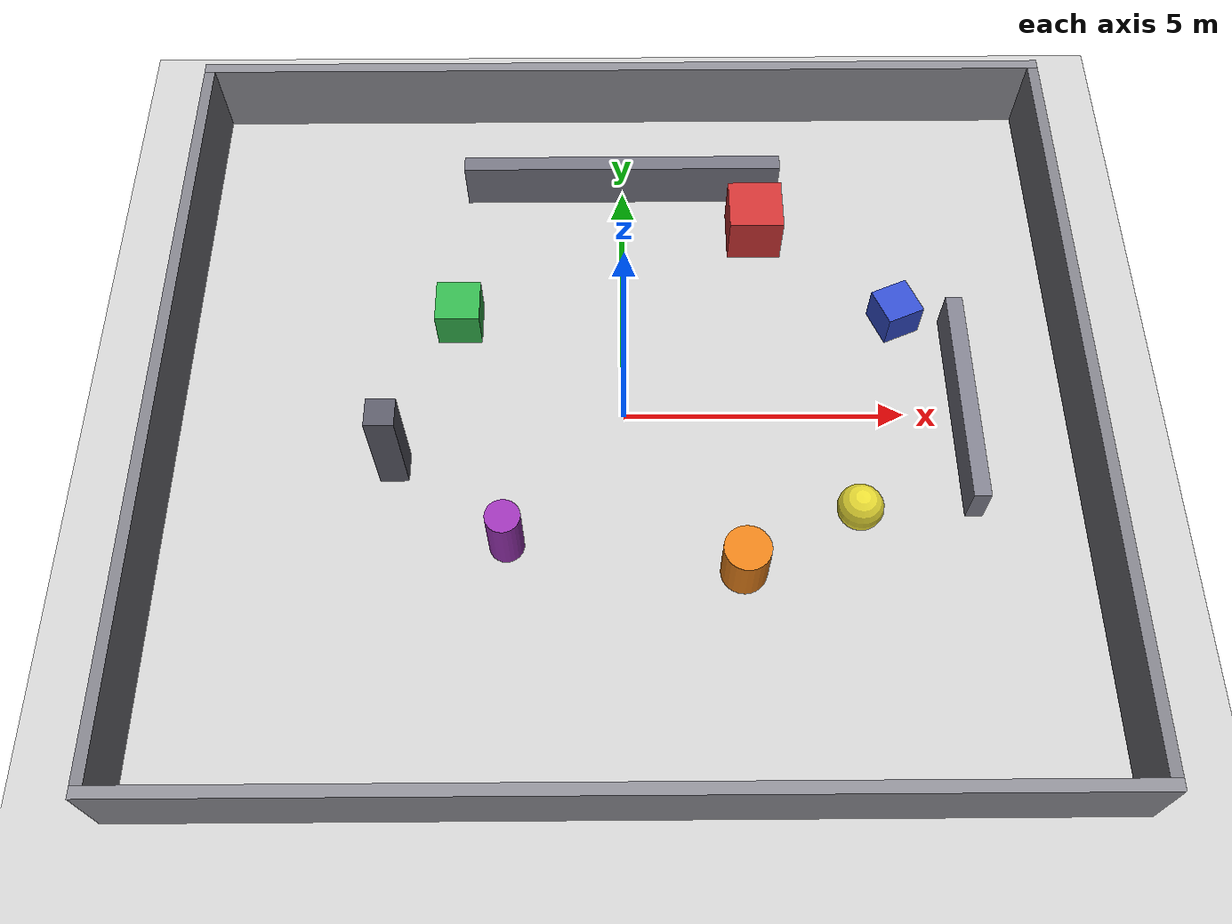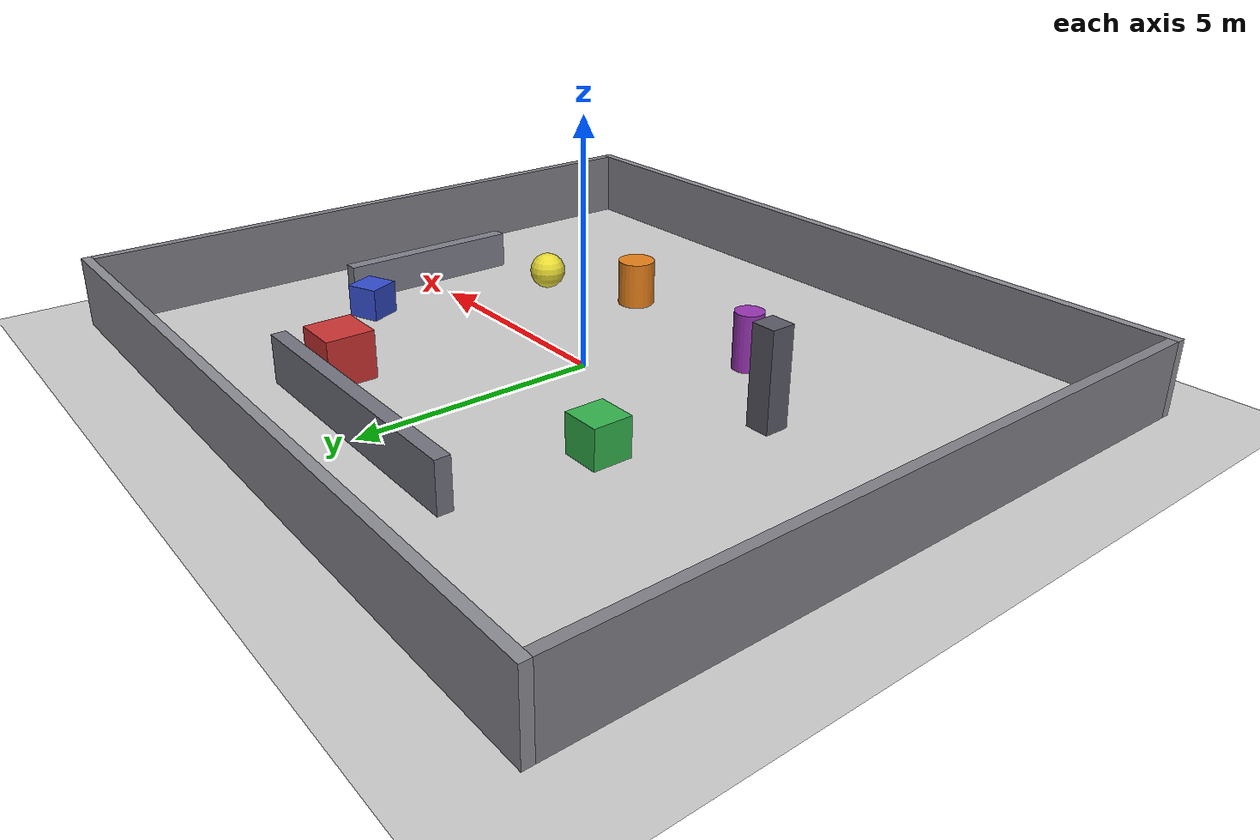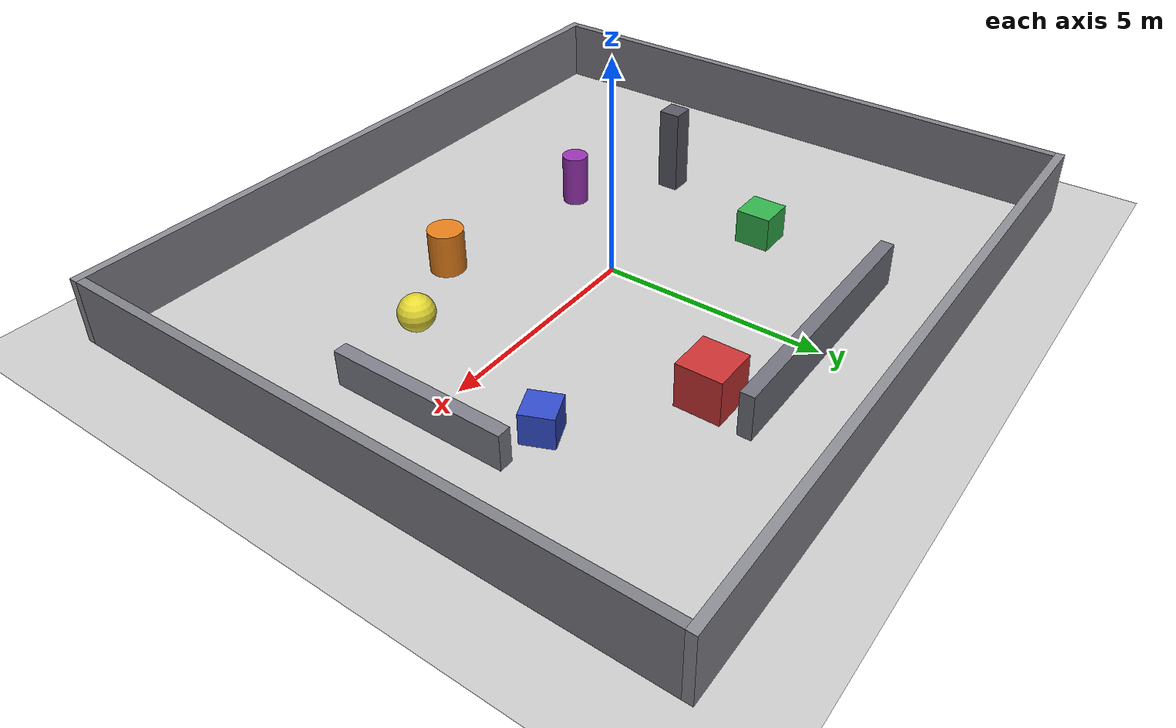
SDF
<?xml version="1.0" ?>
<sdf version="1.8">
  <world name="spot_obstacles">
    <physics name="1ms" type="ignored">
      <max_step_size>0.001</max_step_size>
      <real_time_factor>1.0</real_time_factor>
    </physics>

    <plugin filename="gz-sim-physics-system" name="gz::sim::systems::Physics"/>
    <plugin filename="gz-sim-user-commands-system" name="gz::sim::systems::UserCommands"/>
    <plugin filename="gz-sim-scene-broadcaster-system" name="gz::sim::systems::SceneBroadcaster"/>
    <plugin filename="gz-sim-contact-system" name="gz::sim::systems::Contact"/>
    <plugin filename="gz-sim-imu-system" name="gz::sim::systems::Imu"/>
    <plugin filename="gz-sim-sensors-system" name="gz::sim::systems::Sensors">
      <render_engine>ogre2</render_engine>
    </plugin>

    <light type="directional" name="sun">
      <cast_shadows>true</cast_shadows>
      <pose>0 0 10 0 0 0</pose>
      <diffuse>0.8 0.8 0.8 1</diffuse>
      <specular>0.2 0.2 0.2 1</specular>
      <attenuation>
        <range>1000</range>
        <constant>0.9</constant>
        <linear>0.01</linear>
        <quadratic>0.001</quadratic>
      </attenuation>
      <direction>-0.5 0.1 -0.9</direction>
    </light>

    <model name="ground_plane">
      <static>true</static>
      <link name="link">
        <collision name="collision">
          <geometry>
            <plane>
              <normal>0 0 1</normal>
              <size>100 100</size>
            </plane>
          </geometry>
          <surface>
            <friction>
              <ode>
                <mu>1.5</mu>
                <mu2>1.5</mu2>
              </ode>
            </friction>
            <contact>
              <ode>
                <kp>1e6</kp>
                <kd>100</kd>
                <min_depth>0.001</min_depth>
                <max_vel>0.5</max_vel>
              </ode>
            </contact>
          </surface>
        </collision>
        <visual name="visual">
          <geometry>
            <plane>
              <normal>0 0 1</normal>
              <size>100 100</size>
            </plane>
          </geometry>
          <material>
            <ambient>0.8 0.8 0.8 1</ambient>
            <diffuse>0.8 0.8 0.8 1</diffuse>
            <specular>0.8 0.8 0.8 1</specular>
          </material>
        </visual>
      </link>
    </model>

    <!-- Boxes (static obstacles) -->
    <model name="box_red">
      <static>true</static>
      <!-- Side of spawn (+Y); clear of forward path along +X -->
      <pose>2.5 4.0 0.5 0 0 0</pose>
      <link name="link">
        <collision name="collision">
          <geometry><box><size>1 1 1</size></box></geometry>
        </collision>
        <visual name="visual">
          <geometry><box><size>1 1 1</size></box></geometry>
          <material>
            <ambient>0.8 0.2 0.2 1</ambient>
            <diffuse>0.8 0.2 0.2 1</diffuse>
          </material>
        </visual>
      </link>
    </model>

    <model name="box_blue">
      <static>true</static>
      <pose>5 2 0.35 0 0 0.4</pose>
      <link name="link">
        <collision name="collision">
          <geometry><box><size>0.7 0.7 0.7</size></box></geometry>
        </collision>
        <visual name="visual">
          <geometry><box><size>0.7 0.7 0.7</size></box></geometry>
          <material>
            <ambient>0.2 0.3 0.8 1</ambient>
            <diffuse>0.2 0.3 0.8 1</diffuse>
          </material>
        </visual>
      </link>
    </model>

    <model name="box_green">
      <static>true</static>
      <pose>-3 2 0.4 0 0 0</pose>
      <link name="link">
        <collision name="collision">
          <geometry><box><size>0.8 0.8 0.8</size></box></geometry>
        </collision>
        <visual name="visual">
          <geometry><box><size>0.8 0.8 0.8</size></box></geometry>
          <material>
            <ambient>0.2 0.7 0.3 1</ambient>
            <diffuse>0.2 0.7 0.3 1</diffuse>
          </material>
        </visual>
      </link>
    </model>

    <!-- Cylinders -->
    <model name="cylinder_orange">
      <static>true</static>
      <pose>2 -3 0.5 0 0 0</pose>
      <link name="link">
        <collision name="collision">
          <geometry><cylinder><radius>0.4</radius><length>1.0</length></cylinder></geometry>
        </collision>
        <visual name="visual">
          <geometry><cylinder><radius>0.4</radius><length>1.0</length></cylinder></geometry>
          <material>
            <ambient>0.9 0.5 0.1 1</ambient>
            <diffuse>0.9 0.5 0.1 1</diffuse>
          </material>
        </visual>
      </link>
    </model>

    <model name="cylinder_purple">
      <static>true</static>
      <pose>-2 -2.5 0.6 0 0 0</pose>
      <link name="link">
        <collision name="collision">
          <geometry><cylinder><radius>0.3</radius><length>1.2</length></cylinder></geometry>
        </collision>
        <visual name="visual">
          <geometry><cylinder><radius>0.3</radius><length>1.2</length></cylinder></geometry>
          <material>
            <ambient>0.6 0.2 0.7 1</ambient>
            <diffuse>0.6 0.2 0.7 1</diffuse>
          </material>
        </visual>
      </link>
    </model>

    <!-- Sphere -->
    <model name="sphere_yellow">
      <static>true</static>
      <pose>4 -2 0.4 0 0 0</pose>
      <link name="link">
        <collision name="collision">
          <geometry><sphere><radius>0.4</radius></sphere></geometry>
        </collision>
        <visual name="visual">
          <geometry><sphere><radius>0.4</radius></sphere></geometry>
          <material>
            <ambient>0.9 0.85 0.2 1</ambient>
            <diffuse>0.9 0.85 0.2 1</diffuse>
          </material>
        </visual>
      </link>
    </model>

    <!-- Low wall / barrier -->
    <model name="wall_front">
      <static>true</static>
      <pose>6 0 0.4 0 0 0</pose>
      <link name="link">
        <collision name="collision">
          <geometry><box><size>0.3 4 0.8</size></box></geometry>
        </collision>
        <visual name="visual">
          <geometry><box><size>0.3 4 0.8</size></box></geometry>
          <material>
            <ambient>0.5 0.5 0.55 1</ambient>
            <diffuse>0.5 0.5 0.55 1</diffuse>
          </material>
        </visual>
      </link>
    </model>

    <model name="wall_side">
      <static>true</static>
      <pose>0 5 0.5 0 0 0</pose>
      <link name="link">
        <collision name="collision">
          <geometry><box><size>6 0.3 1.0</size></box></geometry>
        </collision>
        <visual name="visual">
          <geometry><box><size>6 0.3 1.0</size></box></geometry>
          <material>
            <ambient>0.45 0.45 0.5 1</ambient>
            <diffuse>0.45 0.45 0.5 1</diffuse>
          </material>
        </visual>
      </link>
    </model>

    <!-- Tall pillar -->
    <model name="pillar">
      <static>true</static>
      <pose>-4 -1 1.0 0 0 0</pose>
      <link name="link">
        <collision name="collision">
          <geometry><box><size>0.5 0.5 2.0</size></box></geometry>
        </collision>
        <visual name="visual">
          <geometry><box><size>0.5 0.5 2.0</size></box></geometry>
          <material>
            <ambient>0.35 0.35 0.4 1</ambient>
            <diffuse>0.35 0.35 0.4 1</diffuse>
          </material>
        </visual>
      </link>
    </model>

    <model name="boundary_wall_north">
      <static>true</static>
      <pose>0 7 0.75 0 0 0</pose>
      <link name="link">
        <collision name="collision">
          <geometry><box><size>16.2 0.2 1.5</size></box></geometry>
        </collision>
        <visual name="visual">
          <geometry><box><size>16.2 0.2 1.5</size></box></geometry>
          <material>
            <ambient>0.55 0.55 0.58 1</ambient>
            <diffuse>0.55 0.55 0.58 1</diffuse>
          </material>
        </visual>
      </link>
    </model>

    <model name="boundary_wall_south">
      <static>true</static>
      <pose>0 -7 0.75 0 0 0</pose>
      <link name="link">
        <collision name="collision">
          <geometry><box><size>16.2 0.2 1.5</size></box></geometry>
        </collision>
        <visual name="visual">
          <geometry><box><size>16.2 0.2 1.5</size></box></geometry>
          <material>
            <ambient>0.55 0.55 0.58 1</ambient>
            <diffuse>0.55 0.55 0.58 1</diffuse>
          </material>
        </visual>
      </link>
    </model>

    <model name="boundary_wall_east">
      <static>true</static>
      <pose>8 0 0.75 0 0 0</pose>
      <link name="link">
        <collision name="collision">
          <geometry><box><size>0.2 13.8 1.5</size></box></geometry>
        </collision>
        <visual name="visual">
          <geometry><box><size>0.2 13.8 1.5</size></box></geometry>
          <material>
            <ambient>0.5 0.5 0.53 1</ambient>
            <diffuse>0.5 0.5 0.53 1</diffuse>
          </material>
        </visual>
      </link>
    </model>

    <model name="boundary_wall_west">
      <static>true</static>
      <pose>-8 0 0.75 0 0 0</pose>
      <link name="link">
        <collision name="collision">
          <geometry><box><size>0.2 13.8 1.5</size></box></geometry>
        </collision>
        <visual name="visual">
          <geometry><box><size>0.2 13.8 1.5</size></box></geometry>
          <material>
            <ambient>0.5 0.5 0.53 1</ambient>
            <diffuse>0.5 0.5 0.53 1</diffuse>
          </material>
        </visual>
      </link>
    </model>
  </world>
</sdf>
